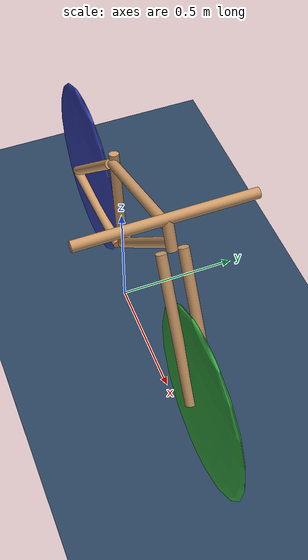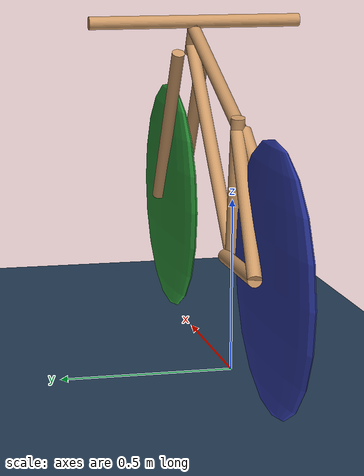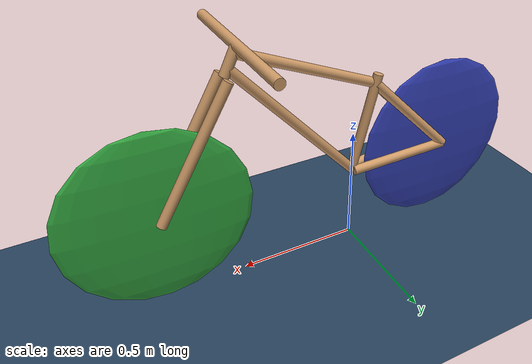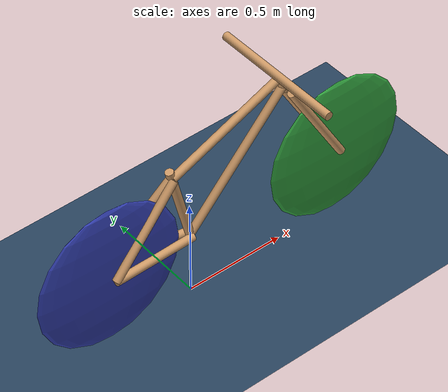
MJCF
<mujoco>
      <asset>
        <texture name="grid" type="2d" builtin="checker" rgb1=".1 .2 .3" rgb2=".2 .3 .4" width="512" height="512"/>
        <texture name="grid_blue" type="2d" builtin="checker" rgb1=".2 .2 1" rgb2=".2 .3 .4" width="512" height="512"/>
        <texture name="grid_green" type="2d" builtin="checker" rgb1=".2 1 .1" rgb2=".2 .3 .4" width="231" height="231"/>

        <material name="grid" texture="grid" texrepeat="2 2" texuniform="true" reflectance="0.2"/>
        <material name="grid_blue" texture="grid_blue" texrepeat="2 2" texuniform="true"/>
        <material name="grid_green" texture="grid_green" texrepeat="2 2" texuniform="true"/>

        <material name="frame" rgba="0.8 0.6 0.4 1"/>
    </asset>

    <worldbody>
        <geom name="floor" type="plane" size="6 4 .01" pos="0 0  0" material="grid"/>

        <body name="frame" pos="0 0 .337">
            <freejoint name="root"/>
            <geom name="chainstay_R" type="cylinder" fromto="0 -.02 0 -.43 -.05 .03" size=".02" material="frame"/>
            <geom name="chainstay_L" type="cylinder" fromto="0  .02 0 -.43  .05 .03" size=".02" material="frame"/>
            <geom name="chainstay_top_R" type="cylinder" fromto="-.086 -.01 .374 -.43 -.05 .03" size=".02" material="frame"/>
            <geom name="chainstay_top_L" type="cylinder" fromto="-.086  .01 .374 -.43  .05 .03" size=".02" material="frame"/>
            <geom name="seattube" type="cylinder" fromto="-.096 .01 .412 0 0 0" size=".02" material="frame"/>
            <geom name="downtube" type="cylinder" fromto="0 0 0 .507 0 .558" size=".02" material="frame"/>
            <geom name="toptube"  type="cylinder" fromto="-.086 0 .374 .481 0 .609" size=".02" material="frame"/>
            <geom name="headtube"  type="cylinder" fromto=".469 0 .633 .520 0 .532" size=".02" material="frame"/>
            <geom name="fork_R"      type="cylinder" fromto=".520 -.04 .532 .817 -.04 .033" size=".02" material="frame"/>
            <geom name="fork_L"      type="cylinder" fromto=".520  .04 .532 .817  .04 .033" size=".02" material="frame"/>
            <geom name="handlebars"  type="cylinder" fromto=".469 -.33 .633 .469 .33 .633" size=".02" material="frame"/>

            <body name="back_wheel">
                <joint name="back_wheel" axis="0 1 0"/>
                <geom name="wheel1" type="ellipsoid" size=".37 .03 .37" pos="-.43 0 .03" material="grid_blue" />
                <inertial pos="-.43 0 .03" mass="2" diaginertia=" 0.169 0.2525 0.169"/>

            </body>

            <body name="front_wheel" >
                <joint name="front_wheel" axis="0 1 0"/>
                <geom name="wheel2" type="ellipsoid" size=".37 .03 .37" pos=".817 0 .033" material="grid_green"/>
                <inertial pos=".817 0 .033" mass="2" diaginertia=" 0.169 0.2525 0.169"/>
            </body>

        </body>
    </worldbody>
</mujoco>
